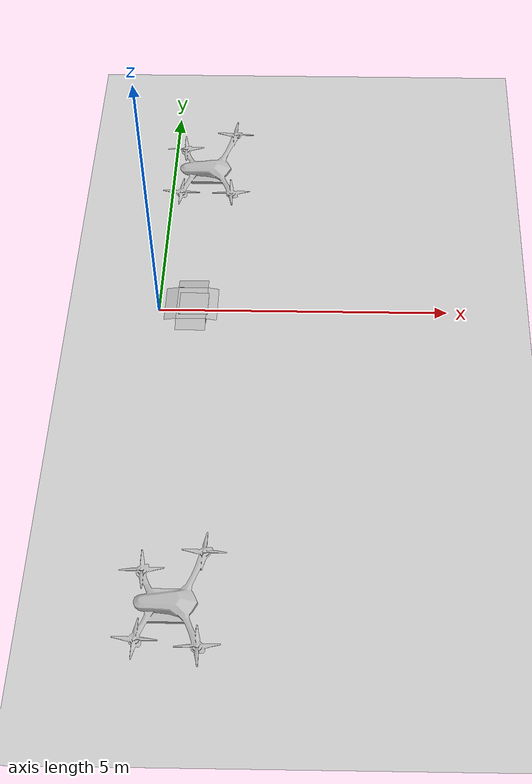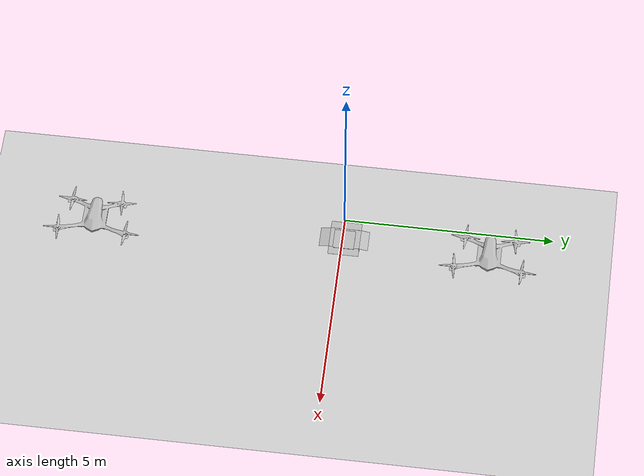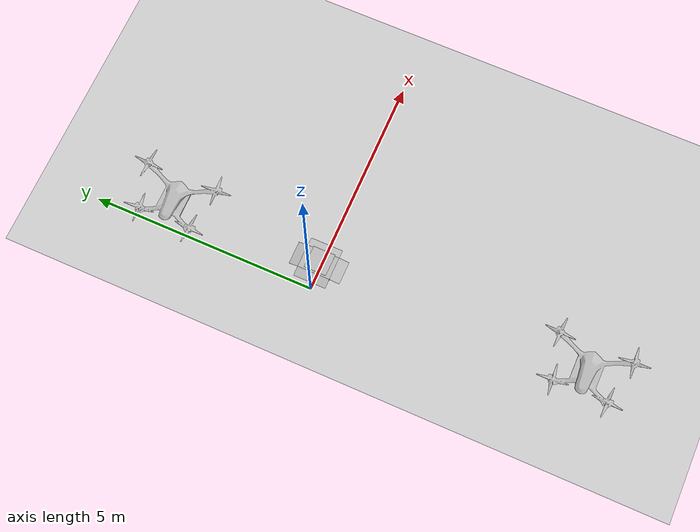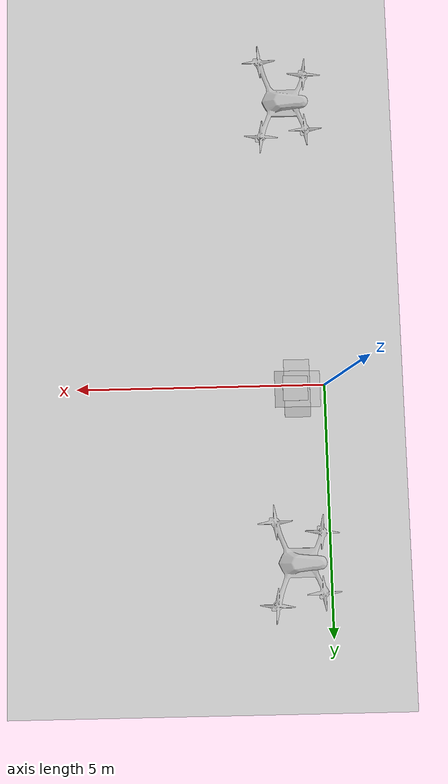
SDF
<sdf version="1.6">
 <world name="default">
  <light name="sun" type="directional">
   <pose>0 0 10 0 -0 0</pose>
   <diffuse>0.8 0.8 0.8 1</diffuse>
   <specular>0.2 0.2 0.2 1</specular>
   <attenuation>
    <range>1000</range>
    <constant>0.9</constant>
    <linear>0.01</linear>
    <quadratic>0.001</quadratic>
   </attenuation>
   <direction>-0.5 0.1 -0.9</direction>
  </light>
  <model name="ground_plane">
   <static>1</static>
   <link name="link">
    <collision name="collision">
     <geometry><plane><normal>0 0 1</normal><size>100 100</size></plane></geometry>
     <surface><friction><ode><mu>100</mu><mu2>50</mu2></ode></friction></surface>
    </collision>
    <visual name="visual">
     <cast_shadows>0</cast_shadows>
     <geometry><plane><normal>0 0 1</normal><size>100 100</size></plane></geometry>
     <material>
      <script><uri>file://media/materials/scripts/gazebo.material</uri><name>Gazebo/Grey</name></script>
     </material>
    </visual>
   </link>
  </model>
  <gravity>0 0 -9.8</gravity>
  <magnetic_field>6e-06 2.3e-05 -4.2e-05</magnetic_field>
  <atmosphere type="adiabatic"/>
  <physics name="default_physics" default="0" type="ode">
   <max_step_size>0.001</max_step_size>
   <real_time_factor>1</real_time_factor>
   <real_time_update_rate>400</real_time_update_rate>
  </physics>
  <scene><ambient>0.4 0.4 0.4 1</ambient><background>0.7 0.7 0.7 1</background><shadows>1</shadows></scene>
  <spherical_coordinates>
   <surface_model>EARTH_WGS84</surface_model>
   <latitude_deg>0</latitude_deg>
   <longitude_deg>0</longitude_deg>
   <elevation>0</elevation>
   <heading_deg>0</heading_deg>
  </spherical_coordinates>
  <plugin name="fanuc_lrmate200id_gazebo_pick_place" filename="libfanuc_lrmate200id_gazebo_pick_place.so"/>
  <audio><device>default</device></audio>
  <model name="open_box">
   <static>0</static>
   <link name="box_base">
    <inertial>
     <mass>1</mass>
     <inertia><ixx>0.0408</ixx><ixy>0</ixy><ixz>0</ixz><iyy>0.02084</iyy><iyz>0</iyz><izz>0.0616</izz></inertia>
    </inertial>
    <sensor name="shipping_box_contact" type="contact">
     <update_rate>1</update_rate>
     <contact><collision>box_base</collision><topic>__default_topic__</topic></contact>
    </sensor>
    <collision name="box_base">
     <pose>0 0 0.0015 0 -0 0</pose>
     <surface><contact><ode><max_vel>0</max_vel><min_depth>0.001</min_depth></ode></contact></surface>
     <geometry><box><size>0.49 0.69 0.001</size></box></geometry>
    </collision>
    <collision name="box_bottom">
     <pose>0 0 0.0005 0 -0 0</pose>
     <surface><contact><ode><max_vel>0</max_vel><min_depth>0.001</min_depth></ode></contact></surface>
     <geometry><box><size>0.49 0.69 0.001</size></box></geometry>
    </collision>
    <collision name="tray_collision1">
     <pose>0.25 0 0.0127 0 -0 0</pose>
     <surface><contact><ode><max_vel>0</max_vel><min_depth>0.001</min_depth></ode></contact></surface>
     <geometry><box><size>0.001 0.7 0.0254</size></box></geometry>
    </collision>
    <collision name="tray_collision2">
     <pose>-0.25 0 0.0127 0 -0 0</pose>
     <surface><contact><ode><max_vel>0</max_vel><min_depth>0.001</min_depth></ode></contact></surface>
     <geometry><box><size>0.001 0.7 0.0254</size></box></geometry>
    </collision>
    <collision name="tray_collision3">
     <pose>0 0.35 0.0127 0 -0 0</pose>
     <surface><contact><ode><max_vel>0</max_vel><min_depth>0.001</min_depth></ode></contact></surface>
     <geometry><box><size>0.5 0.001 0.0254</size></box></geometry>
    </collision>
    <collision name="tray_collision4">
     <pose>0 -0.35 0.0127 0 -0 0</pose>
     <surface><contact><ode><max_vel>0</max_vel><min_depth>0.001</min_depth></ode></contact></surface>
     <geometry><box><size>0.5 0.001 0.0254</size></box></geometry>
    </collision>
    <visual name="open_box">
     <geometry>
      <mesh><scale>1.1 1.8 0.25</scale><uri>model://open_box_ariac/meshes/open_box.obj</uri></mesh>
     </geometry>
     <plugin name="toggle" filename="libToggleVisualPlugin.so">
      <initially_visible>1</initially_visible>
      <topic>~/shipping_box_visual_toggle</topic>
     </plugin>
    </visual>
    <visual name="closed_box">
     <geometry>
      <mesh><scale>1.1 1.8 0.25</scale><uri>model://closed_box_ariac/meshes/closed_box.obj</uri></mesh>
     </geometry>
     <plugin name="toggle" filename="libToggleVisualPlugin.so">
      <initially_visible>0</initially_visible>
      <topic>~/shipping_box_visual_toggle</topic>
     </plugin>
    </visual>
   </link>
   <pose>0.569471 0.071616 -0.000794 -0.000425 0.000133 -0</pose>
  </model>
  <model name="drone_with_box">
   <static>1</static>
   <link name="drone::link">
    <pose>0 0 0 0 0 -1.5707</pose>
    <collision name="collision">
     <geometry><mesh><scale>1.3 1.3 1</scale><uri>model://drone_ariac/meshes/Drone.dae</uri></mesh></geometry>
    </collision>
    <visual name="visual">
     <geometry><mesh><scale>1.3 1.3 1</scale><uri>model://drone_ariac/meshes/Drone.dae</uri></mesh></geometry>
    </visual>
   </link>
   <static>1</static>
   <link name="box_link">
    <visual name="box_visual">
     <pose>0 0 -0.13 0 -0 1.5707</pose>
     <geometry>
      <mesh><scale>1.1 1.8 0.25</scale><uri>model://closed_box_ariac/meshes/closed_box.obj</uri></mesh>
     </geometry>
     <plugin name="toggle" filename="libToggleVisualPlugin.so">
      <initially_visible>0</initially_visible>
      <topic>~/drone_box_visual_toggle</topic>
     </plugin>
    </visual>
   </link>
   <pose>0.549307 3.51078 0 0 -0 0</pose>
  </model>
  <model name="drone_with_box_clone">
   <static>1</static>
   <link name="drone::link">
    <pose>0 0 0 0 0 -1.5707</pose>
    <collision name="collision">
     <geometry><mesh><scale>1.3 1.3 1</scale><uri>model://drone_ariac/meshes/Drone.dae</uri></mesh></geometry>
    </collision>
    <visual name="visual">
     <geometry><mesh><scale>1.3 1.3 1</scale><uri>model://drone_ariac/meshes/Drone.dae</uri></mesh></geometry>
    </visual>
   </link>
   <static>1</static>
   <link name="box_link">
    <visual name="box_visual">
     <pose>0 0 -0.13 0 -0 1.5707</pose>
     <geometry>
      <mesh><scale>1.1 1.8 0.25</scale><uri>model://closed_box_ariac/meshes/closed_box.obj</uri></mesh>
     </geometry>
     <plugin name="toggle" filename="libToggleVisualPlugin.so">
      <initially_visible>0</initially_visible>
      <topic>~/drone_box_visual_toggle</topic>
     </plugin>
    </visual>
   </link>
   <pose>0.58877 -5.93038 0 0 -0 0</pose>
  </model>
  <model name="aruco_marker_202_100mm_0">
   <static>1</static>
   <link name="link">
    <visual name="visual">
     <geometry>
      <mesh><uri>model://aruco_marker_202_100mm/meshes/aruco_marker_202_100mm.dae</uri><scale>1 1 1</scale></mesh>
     </geometry>
    </visual>
   </link>
   <pose>0.853615 0.056829 0.112807 -0.15982 1.56558 2.97896</pose>
  </model>
 </world>
</sdf>
